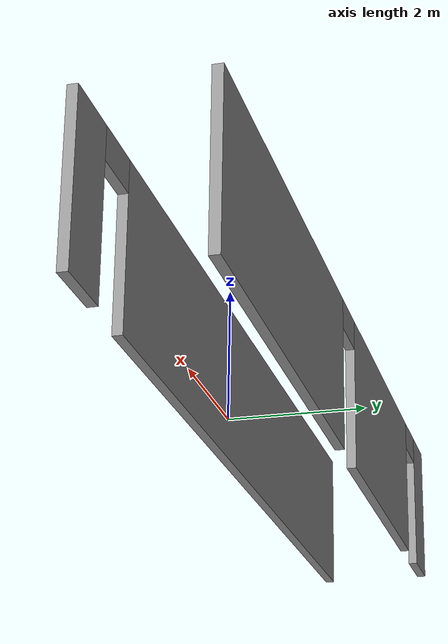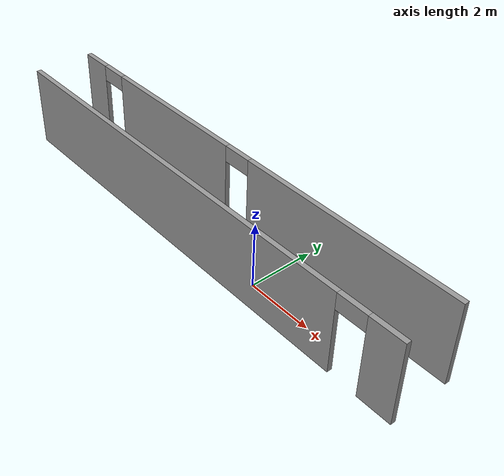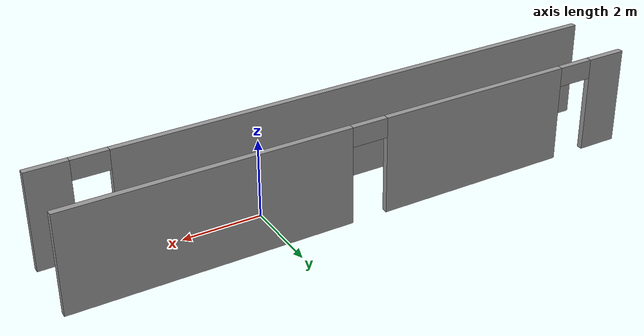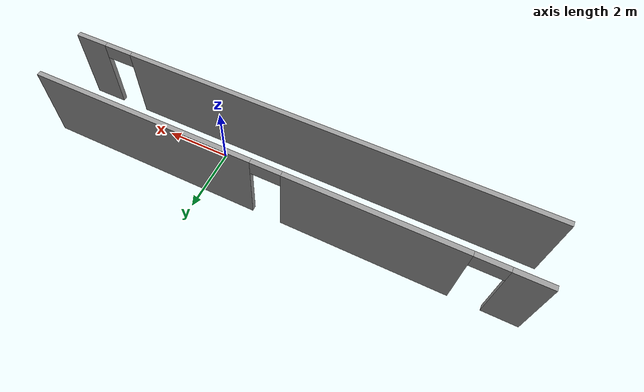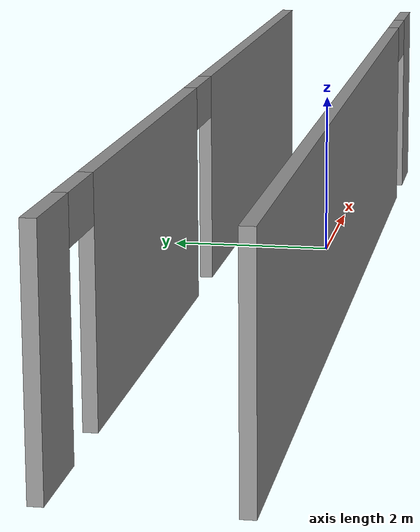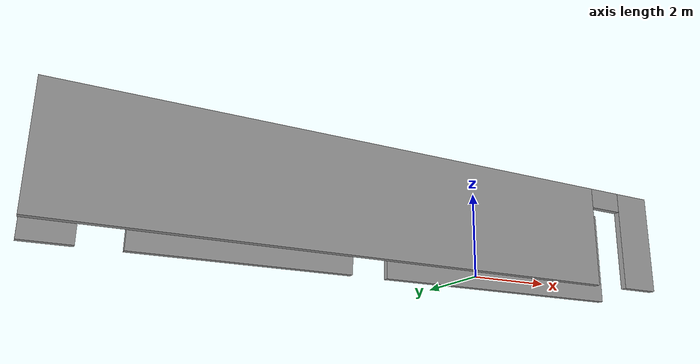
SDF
<?xml version='1.0'?>
<sdf version='1.6'>
  <model name='korytarz_nie_symetryczny'>
    <pose frame=''>-2.15066 0.367986 0 0 -0 0</pose>
    <link name='Wall_0'>
      <pose frame=''>0.010764 0.912274 0 0 -0 0</pose>
      <visual name='Wall_0_Visual_0'>
        <pose frame=''>-6.86325 0 1.25 0 -0 0</pose>
        <geometry>
          <box>
            <size>1.02351 0.15 2.5</size>
          </box>
        </geometry>
        <material>
          <script>
            <uri>file://media/materials/scripts/gazebo.material</uri>
            <name>Gazebo/Grey</name>
          </script>
          <ambient>1 1 1 1</ambient>
        </material>
        <meta>
          <layer>0</layer>
        </meta>
      </visual>
      <collision name='Wall_0_Collision_0'>
        <geometry>
          <box>
            <size>1.02351 0.15 2.5</size>
          </box>
        </geometry>
        <pose frame=''>-6.86325 0 1.25 0 -0 0</pose>
      </collision>
      <visual name='Wall_0_Visual_1'>
        <pose frame=''>-2.95184 0 1.25 0 -0 0</pose>
        <geometry>
          <box>
            <size>4.9993 0.15 2.5</size>
          </box>
        </geometry>
        <material>
          <script>
            <uri>file://media/materials/scripts/gazebo.material</uri>
            <name>Gazebo/Grey</name>
          </script>
          <ambient>1 1 1 1</ambient>
        </material>
        <meta>
          <layer>0</layer>
        </meta>
      </visual>
      <collision name='Wall_0_Collision_1'>
        <geometry>
          <box>
            <size>4.9993 0.15 2.5</size>
          </box>
        </geometry>
        <pose frame=''>-2.95184 0 1.25 0 -0 0</pose>
      </collision>
      <visual name='Wall_0_Visual_2'>
        <pose frame=''>3.9114 0 1.25 0 -0 0</pose>
        <geometry>
          <box>
            <size>6.92719 0.15 2.5</size>
          </box>
        </geometry>
        <material>
          <script>
            <uri>file://media/materials/scripts/gazebo.material</uri>
            <name>Gazebo/Grey</name>
          </script>
          <ambient>1 1 1 1</ambient>
        </material>
        <meta>
          <layer>0</layer>
        </meta>
      </visual>
      <collision name='Wall_0_Collision_2'>
        <geometry>
          <box>
            <size>6.92719 0.15 2.5</size>
          </box>
        </geometry>
        <pose frame=''>3.9114 0 1.25 0 -0 0</pose>
      </collision>
      <visual name='Wall_0_Visual_3'>
        <pose frame=''>-5.90149 0 2.25 0 -0 0</pose>
        <geometry>
          <box>
            <size>0.9 0.15 0.5</size>
          </box>
        </geometry>
        <material>
          <script>
            <uri>file://media/materials/scripts/gazebo.material</uri>
            <name>Gazebo/Grey</name>
          </script>
          <ambient>1 1 1 1</ambient>
        </material>
        <meta>
          <layer>0</layer>
        </meta>
      </visual>
      <collision name='Wall_0_Collision_3'>
        <geometry>
          <box>
            <size>0.9 0.15 0.5</size>
          </box>
        </geometry>
        <pose frame=''>-5.90149 0 2.25 0 -0 0</pose>
      </collision>
      <visual name='Wall_0_Visual_4'>
        <pose frame=''>-0.002194 0 2.25 0 -0 0</pose>
        <geometry>
          <box>
            <size>0.9 0.15 0.5</size>
          </box>
        </geometry>
        <material>
          <script>
            <uri>file://media/materials/scripts/gazebo.material</uri>
            <name>Gazebo/Grey</name>
          </script>
          <ambient>1 1 1 1</ambient>
        </material>
        <meta>
          <layer>0</layer>
        </meta>
      </visual>
      <collision name='Wall_0_Collision_4'>
        <geometry>
          <box>
            <size>0.9 0.15 0.5</size>
          </box>
        </geometry>
        <pose frame=''>-0.002194 0 2.25 0 -0 0</pose>
      </collision>
    </link>
    <link name='Wall_2'>
      <pose frame=''>-0.010764 -0.912274 0 0 -0 0</pose>
      <visual name='Wall_2_Visual_0'>
        <pose frame=''>-0.961508 0 1.25 0 -0 0</pose>
        <geometry>
          <box>
            <size>12.827 0.15 2.5</size>
          </box>
        </geometry>
        <material>
          <script>
            <uri>file://media/materials/scripts/gazebo.material</uri>
            <name>Gazebo/Grey</name>
          </script>
          <ambient>1 1 1 1</ambient>
        </material>
        <meta>
          <layer>0</layer>
        </meta>
      </visual>
      <collision name='Wall_2_Collision_0'>
        <geometry>
          <box>
            <size>12.827 0.15 2.5</size>
          </box>
        </geometry>
        <pose frame=''>-0.961508 0 1.25 0 -0 0</pose>
      </collision>
      <visual name='Wall_2_Visual_1'>
        <pose frame=''>6.86349 0 1.25 0 -0 0</pose>
        <geometry>
          <box>
            <size>1.02302 0.15 2.5</size>
          </box>
        </geometry>
        <material>
          <script>
            <uri>file://media/materials/scripts/gazebo.material</uri>
            <name>Gazebo/Grey</name>
          </script>
          <ambient>1 1 1 1</ambient>
        </material>
        <meta>
          <layer>0</layer>
        </meta>
      </visual>
      <collision name='Wall_2_Collision_1'>
        <geometry>
          <box>
            <size>1.02302 0.15 2.5</size>
          </box>
        </geometry>
        <pose frame=''>6.86349 0 1.25 0 -0 0</pose>
      </collision>
      <visual name='Wall_2_Visual_2'>
        <pose frame=''>5.90198 0 2.25 0 -0 0</pose>
        <geometry>
          <box>
            <size>0.9 0.15 0.5</size>
          </box>
        </geometry>
        <material>
          <script>
            <uri>file://media/materials/scripts/gazebo.material</uri>
            <name>Gazebo/Grey</name>
          </script>
          <ambient>1 1 1 1</ambient>
        </material>
        <meta>
          <layer>0</layer>
        </meta>
      </visual>
      <collision name='Wall_2_Collision_2'>
        <geometry>
          <box>
            <size>0.9 0.15 0.5</size>
          </box>
        </geometry>
        <pose frame=''>5.90198 0 2.25 0 -0 0</pose>
      </collision>
    </link>
    <static>1</static>
  </model>
</sdf>
